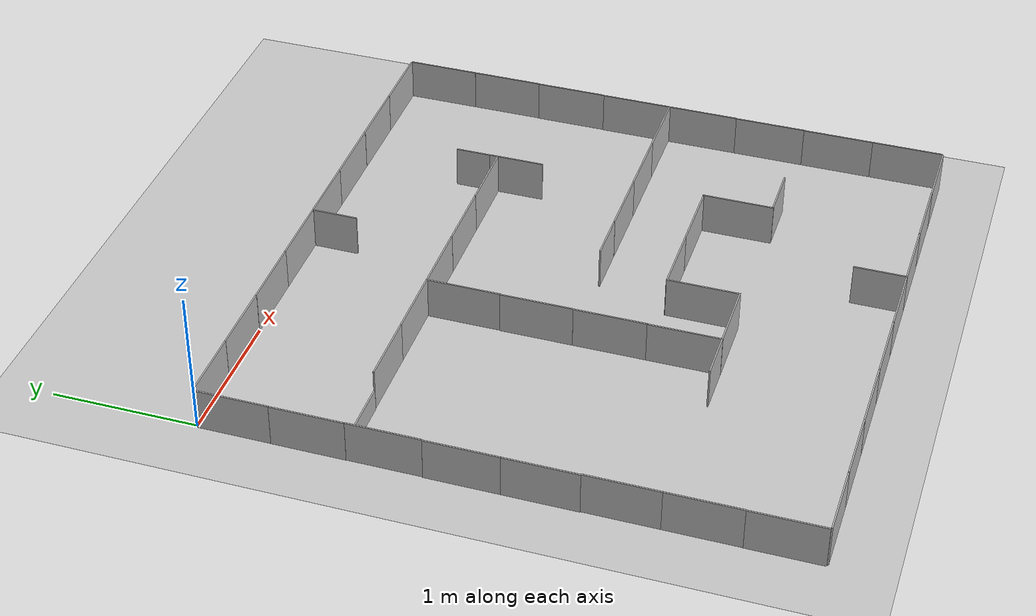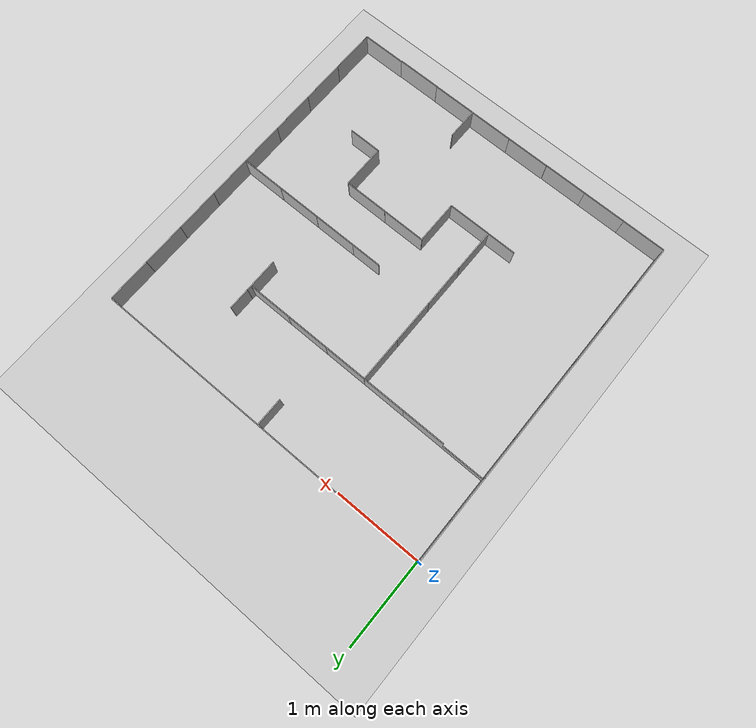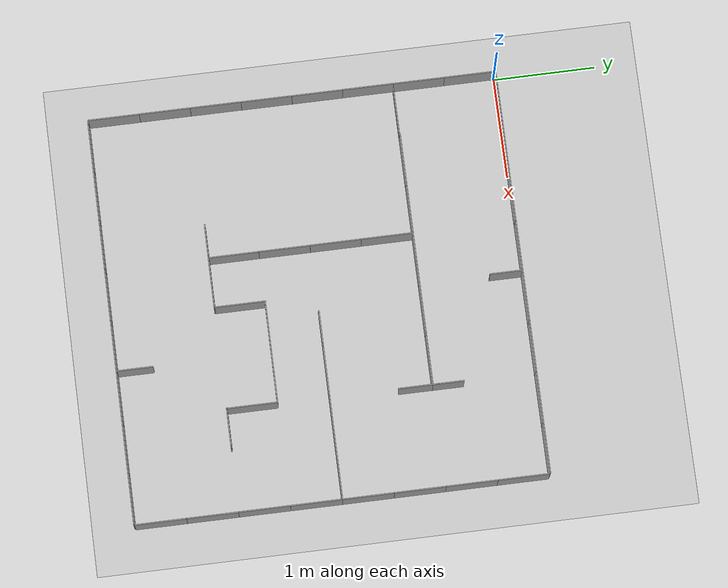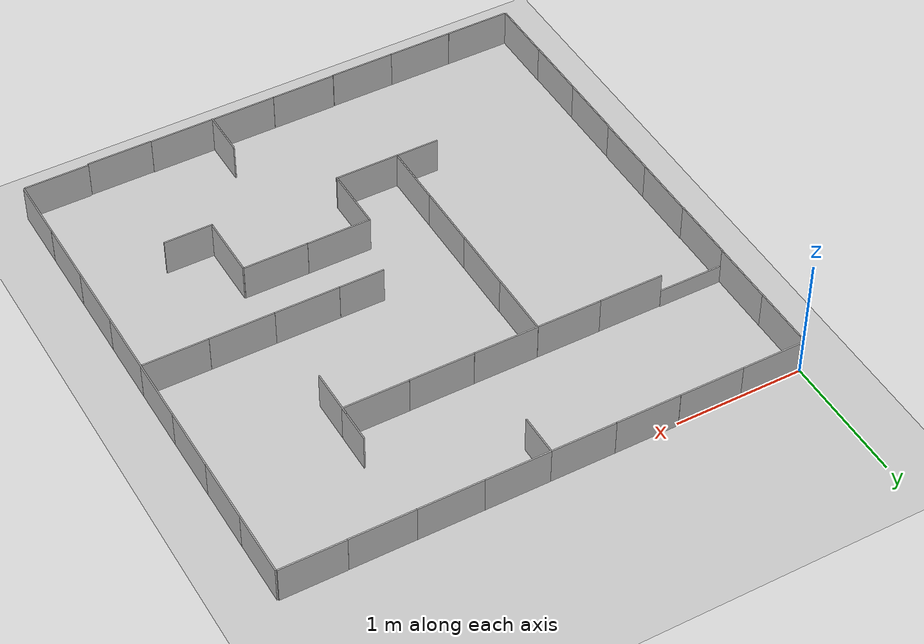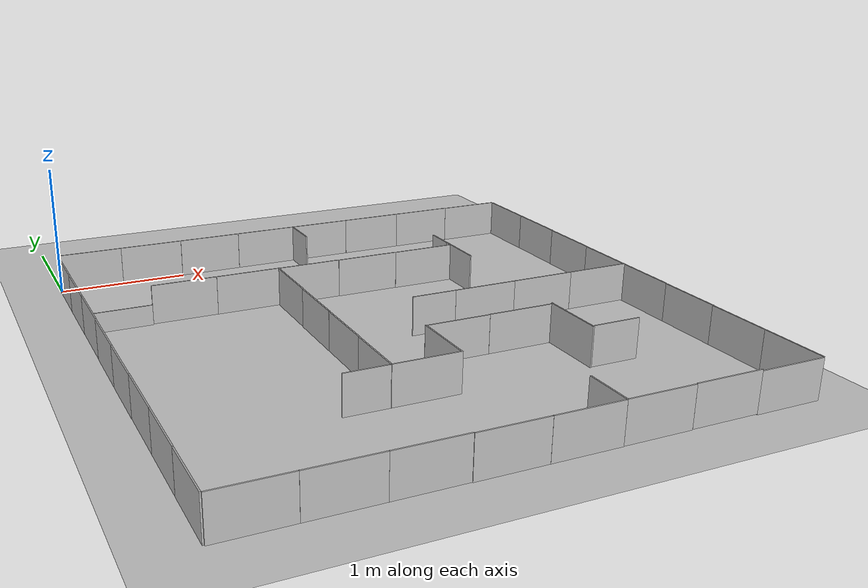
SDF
<sdf version="1.6">
 <world name="default">
  <light name="sun" type="directional">
   <pose>0 0 10 0 -0 0</pose>
   <diffuse>0.8 0.8 0.8 1</diffuse>
   <specular>0.2 0.2 0.2 1</specular>
   <attenuation>
    <range>1000</range>
    <constant>0.9</constant>
    <linear>0.01</linear>
    <quadratic>0.001</quadratic>
   </attenuation>
   <direction>-0.5 0.1 -0.9</direction>
  </light>
  <model name="ground_plane">
   <static>1</static>
   <link name="link">
    <collision name="collision">
     <geometry><plane><normal>0 0 1</normal><size>100 100</size></plane></geometry>
     <surface><friction><ode><mu>100</mu><mu2>50</mu2></ode></friction></surface>
    </collision>
    <visual name="visual">
     <cast_shadows>0</cast_shadows>
     <geometry><plane><normal>0 0 1</normal><size>100 100</size></plane></geometry>
     <material>
      <script><uri>file://media/materials/scripts/gazebo.material</uri><name>Gazebo/Grey</name></script>
     </material>
    </visual>
   </link>
  </model>
  <gravity>0 0 -9.8</gravity>
  <magnetic_field>6e-06 2.3e-05 -4.2e-05</magnetic_field>
  <atmosphere type="adiabatic"/>
  <physics name="default_physics" default="0" type="ode">
   <max_step_size>0.001</max_step_size>
   <real_time_factor>1</real_time_factor>
   <real_time_update_rate>1000</real_time_update_rate>
  </physics>
  <scene><ambient>0.4 0.4 0.4 1</ambient><background>0.7 0.7 0.7 1</background><shadows>1</shadows></scene>
  <audio><device>default</device></audio>
  <spherical_coordinates>
   <surface_model>EARTH_WGS84</surface_model>
   <latitude_deg>0</latitude_deg>
   <longitude_deg>0</longitude_deg>
   <elevation>0</elevation>
   <heading_deg>0</heading_deg>
  </spherical_coordinates>
  <model name="M1_qr_0">
   <static>1</static>
   <link name="link">
    <collision name="collision">
     <geometry><box><size>0.5 0.01 0.3</size></box></geometry>
     <surface><friction><ode><mu>30</mu><mu2>30</mu2></ode></friction></surface>
    </collision>
    <visual name="visual">
     <geometry><box><size>0.5 0.01 0.3</size></box></geometry>
     <material>
      <script>
       <uri>model://M1_qr/materials/scripts</uri>
       <uri>model://M1_qr/materials/textures/</uri>
       <name>M1_qr/Image</name>
      </script>
     </material>
    </visual>
   </link>
   <pose>0.747926 0.007287 0.150535 0 -0 0</pose>
  </model>
  <model name="M1_qr_1">
   <static>1</static>
   <link name="link">
    <collision name="collision">
     <geometry><box><size>0.5 0.01 0.3</size></box></geometry>
     <surface><friction><ode><mu>30</mu><mu2>30</mu2></ode></friction></surface>
    </collision>
    <visual name="visual">
     <geometry><box><size>0.5 0.01 0.3</size></box></geometry>
     <material>
      <script>
       <uri>model://M1_qr/materials/scripts</uri>
       <uri>model://M1_qr/materials/textures/</uri>
       <name>M1_qr/Image</name>
      </script>
     </material>
    </visual>
   </link>
   <pose>1.24851 0.006495 0.150627 0 -0 0</pose>
  </model>
  <model name="M1_qr_2">
   <static>1</static>
   <link name="link">
    <collision name="collision">
     <geometry><box><size>0.5 0.01 0.3</size></box></geometry>
     <surface><friction><ode><mu>30</mu><mu2>30</mu2></ode></friction></surface>
    </collision>
    <visual name="visual">
     <geometry><box><size>0.5 0.01 0.3</size></box></geometry>
     <material>
      <script>
       <uri>model://M1_qr/materials/scripts</uri>
       <uri>model://M1_qr/materials/textures/</uri>
       <name>M1_qr/Image</name>
      </script>
     </material>
    </visual>
   </link>
   <pose>1.74893 0.006779 0.150594 0 -0 0</pose>
  </model>
  <model name="M1_qr_3">
   <static>1</static>
   <link name="link">
    <collision name="collision">
     <geometry><box><size>0.5 0.01 0.3</size></box></geometry>
     <surface><friction><ode><mu>30</mu><mu2>30</mu2></ode></friction></surface>
    </collision>
    <visual name="visual">
     <geometry><box><size>0.5 0.01 0.3</size></box></geometry>
     <material>
      <script>
       <uri>model://M1_qr/materials/scripts</uri>
       <uri>model://M1_qr/materials/textures/</uri>
       <name>M1_qr/Image</name>
      </script>
     </material>
    </visual>
   </link>
   <pose>2.24929 0.007017 0.150567 0 -0 0</pose>
  </model>
  <model name="M1_qr_4">
   <static>1</static>
   <link name="link">
    <collision name="collision">
     <geometry><box><size>0.5 0.01 0.3</size></box></geometry>
     <surface><friction><ode><mu>30</mu><mu2>30</mu2></ode></friction></surface>
    </collision>
    <visual name="visual">
     <geometry><box><size>0.5 0.01 0.3</size></box></geometry>
     <material>
      <script>
       <uri>model://M1_qr/materials/scripts</uri>
       <uri>model://M1_qr/materials/textures/</uri>
       <name>M1_qr/Image</name>
      </script>
     </material>
    </visual>
   </link>
   <pose>2.74977 0.006999 0.150569 0 -0 0</pose>
  </model>
  <model name="M1_qr_5">
   <static>1</static>
   <link name="link">
    <collision name="collision">
     <geometry><box><size>0.5 0.01 0.3</size></box></geometry>
     <surface><friction><ode><mu>30</mu><mu2>30</mu2></ode></friction></surface>
    </collision>
    <visual name="visual">
     <geometry><box><size>0.5 0.01 0.3</size></box></geometry>
     <material>
      <script>
       <uri>model://M1_qr/materials/scripts</uri>
       <uri>model://M1_qr/materials/textures/</uri>
       <name>M1_qr/Image</name>
      </script>
     </material>
    </visual>
   </link>
   <pose>3.25049 0.00689 0.150581 0 -0 0</pose>
  </model>
  <model name="M1_qr_6">
   <static>1</static>
   <link name="link">
    <collision name="collision">
     <geometry><box><size>0.5 0.01 0.3</size></box></geometry>
     <surface><friction><ode><mu>30</mu><mu2>30</mu2></ode></friction></surface>
    </collision>
    <visual name="visual">
     <geometry><box><size>0.5 0.01 0.3</size></box></geometry>
     <material>
      <script>
       <uri>model://M1_qr/materials/scripts</uri>
       <uri>model://M1_qr/materials/textures/</uri>
       <name>M1_qr/Image</name>
      </script>
     </material>
    </visual>
   </link>
   <pose>3.75085 0.006974 0.148724 0 -0 0</pose>
  </model>
  <model name="M3_qr">
   <static>1</static>
   <link name="link">
    <collision name="collision">
     <geometry><box><size>0.01 0.5 0.3</size></box></geometry>
     <surface><friction><ode><mu>30</mu><mu2>30</mu2></ode></friction></surface>
    </collision>
    <visual name="visual">
     <geometry><box><size>0.01 0.5 0.3</size></box></geometry>
     <material>
      <script>
       <uri>model://M3_qr/materials/scripts</uri>
       <uri>model://M3_qr/materials/textures/</uri>
       <name>M3_qr/Image</name>
      </script>
     </material>
    </visual>
   </link>
   <pose>4.00638 -0.247919 0.147691 0 -0 0</pose>
  </model>
  <model name="M3_qr_0">
   <static>1</static>
   <link name="link">
    <collision name="collision">
     <geometry><box><size>0.01 0.5 0.3</size></box></geometry>
     <surface><friction><ode><mu>30</mu><mu2>30</mu2></ode></friction></surface>
    </collision>
    <visual name="visual">
     <geometry><box><size>0.01 0.5 0.3</size></box></geometry>
     <material>
      <script>
       <uri>model://M3_qr/materials/scripts</uri>
       <uri>model://M3_qr/materials/textures/</uri>
       <name>M3_qr/Image</name>
      </script>
     </material>
    </visual>
   </link>
   <pose>4.00643 -0.748517 0.147688 0 -0 0</pose>
  </model>
  <model name="M3_qr_1">
   <static>1</static>
   <link name="link">
    <collision name="collision">
     <geometry><box><size>0.01 0.5 0.3</size></box></geometry>
     <surface><friction><ode><mu>30</mu><mu2>30</mu2></ode></friction></surface>
    </collision>
    <visual name="visual">
     <geometry><box><size>0.01 0.5 0.3</size></box></geometry>
     <material>
      <script>
       <uri>model://M3_qr/materials/scripts</uri>
       <uri>model://M3_qr/materials/textures/</uri>
       <name>M3_qr/Image</name>
      </script>
     </material>
    </visual>
   </link>
   <pose>4.00637 -1.24897 0.145912 0 -0 0</pose>
  </model>
  <model name="M3_qr_2">
   <static>1</static>
   <link name="link">
    <collision name="collision">
     <geometry><box><size>0.01 0.5 0.3</size></box></geometry>
     <surface><friction><ode><mu>30</mu><mu2>30</mu2></ode></friction></surface>
    </collision>
    <visual name="visual">
     <geometry><box><size>0.01 0.5 0.3</size></box></geometry>
     <material>
      <script>
       <uri>model://M3_qr/materials/scripts</uri>
       <uri>model://M3_qr/materials/textures/</uri>
       <name>M3_qr/Image</name>
      </script>
     </material>
    </visual>
   </link>
   <pose>4.00626 -1.7491 0.144137 0 -0 0</pose>
  </model>
  <model name="M3_qr_3">
   <static>1</static>
   <link name="link">
    <collision name="collision">
     <geometry><box><size>0.01 0.5 0.3</size></box></geometry>
     <surface><friction><ode><mu>30</mu><mu2>30</mu2></ode></friction></surface>
    </collision>
    <visual name="visual">
     <geometry><box><size>0.01 0.5 0.3</size></box></geometry>
     <material>
      <script>
       <uri>model://M3_qr/materials/scripts</uri>
       <uri>model://M3_qr/materials/textures/</uri>
       <name>M3_qr/Image</name>
      </script>
     </material>
    </visual>
   </link>
   <pose>4.00628 -2.24937 0.144137 0 -0 0</pose>
  </model>
  <model name="M3_qr_4">
   <static>1</static>
   <link name="link">
    <collision name="collision">
     <geometry><box><size>0.01 0.5 0.3</size></box></geometry>
     <surface><friction><ode><mu>30</mu><mu2>30</mu2></ode></friction></surface>
    </collision>
    <visual name="visual">
     <geometry><box><size>0.01 0.5 0.3</size></box></geometry>
     <material>
      <script>
       <uri>model://M3_qr/materials/scripts</uri>
       <uri>model://M3_qr/materials/textures/</uri>
       <name>M3_qr/Image</name>
      </script>
     </material>
    </visual>
   </link>
   <pose>4.00595 -2.74938 0.142376 0 -0 0</pose>
  </model>
  <model name="M3_qr_5">
   <static>1</static>
   <link name="link">
    <collision name="collision">
     <geometry><box><size>0.01 0.5 0.3</size></box></geometry>
     <surface><friction><ode><mu>30</mu><mu2>30</mu2></ode></friction></surface>
    </collision>
    <visual name="visual">
     <geometry><box><size>0.01 0.5 0.3</size></box></geometry>
     <material>
      <script>
       <uri>model://M3_qr/materials/scripts</uri>
       <uri>model://M3_qr/materials/textures/</uri>
       <name>M3_qr/Image</name>
      </script>
     </material>
    </visual>
   </link>
   <pose>4.00606 -3.24969 0.140592 0 -0 0</pose>
  </model>
  <model name="M3_qr_6">
   <static>1</static>
   <link name="link">
    <collision name="collision">
     <geometry><box><size>0.01 0.5 0.3</size></box></geometry>
     <surface><friction><ode><mu>30</mu><mu2>30</mu2></ode></friction></surface>
    </collision>
    <visual name="visual">
     <geometry><box><size>0.01 0.5 0.3</size></box></geometry>
     <material>
      <script>
       <uri>model://M3_qr/materials/scripts</uri>
       <uri>model://M3_qr/materials/textures/</uri>
       <name>M3_qr/Image</name>
      </script>
     </material>
    </visual>
   </link>
   <pose>4.00625 -3.75002 0.140577 0 -0 0</pose>
  </model>
  <model name="M1_qr_7">
   <static>1</static>
   <link name="link">
    <collision name="collision">
     <geometry><box><size>0.5 0.01 0.3</size></box></geometry>
     <surface><friction><ode><mu>30</mu><mu2>30</mu2></ode></friction></surface>
    </collision>
    <visual name="visual">
     <geometry><box><size>0.5 0.01 0.3</size></box></geometry>
     <material>
      <script>
       <uri>model://M1_qr/materials/scripts</uri>
       <uri>model://M1_qr/materials/textures/</uri>
       <name>M1_qr/Image</name>
      </script>
     </material>
    </visual>
   </link>
   <pose>3.75096 -4.00449 0.139755 0 -0 0</pose>
  </model>
  <model name="M1_qr_8">
   <static>1</static>
   <link name="link">
    <collision name="collision">
     <geometry><box><size>0.5 0.01 0.3</size></box></geometry>
     <surface><friction><ode><mu>30</mu><mu2>30</mu2></ode></friction></surface>
    </collision>
    <visual name="visual">
     <geometry><box><size>0.5 0.01 0.3</size></box></geometry>
     <material>
      <script>
       <uri>model://M1_qr/materials/scripts</uri>
       <uri>model://M1_qr/materials/textures/</uri>
       <name>M1_qr/Image</name>
      </script>
     </material>
    </visual>
   </link>
   <pose>3.25087 -4.00444 0.150791 0 -0 0</pose>
  </model>
  <model name="M1_qr_9">
   <static>1</static>
   <link name="link">
    <collision name="collision">
     <geometry><box><size>0.5 0.01 0.3</size></box></geometry>
     <surface><friction><ode><mu>30</mu><mu2>30</mu2></ode></friction></surface>
    </collision>
    <visual name="visual">
     <geometry><box><size>0.5 0.01 0.3</size></box></geometry>
     <material>
      <script>
       <uri>model://M1_qr/materials/scripts</uri>
       <uri>model://M1_qr/materials/textures/</uri>
       <name>M1_qr/Image</name>
      </script>
     </material>
    </visual>
   </link>
   <pose>2.7506 -4.0045 0.147322 0 -0 0</pose>
  </model>
  <model name="M1_qr_10">
   <static>1</static>
   <link name="link">
    <collision name="collision">
     <geometry><box><size>0.5 0.01 0.3</size></box></geometry>
     <surface><friction><ode><mu>30</mu><mu2>30</mu2></ode></friction></surface>
    </collision>
    <visual name="visual">
     <geometry><box><size>0.5 0.01 0.3</size></box></geometry>
     <material>
      <script>
       <uri>model://M1_qr/materials/scripts</uri>
       <uri>model://M1_qr/materials/textures/</uri>
       <name>M1_qr/Image</name>
      </script>
     </material>
    </visual>
   </link>
   <pose>2.25026 -4.00466 0.145579 0 -0 0</pose>
  </model>
  <model name="M1_qr_11">
   <static>1</static>
   <link name="link">
    <collision name="collision">
     <geometry><box><size>0.5 0.01 0.3</size></box></geometry>
     <surface><friction><ode><mu>30</mu><mu2>30</mu2></ode></friction></surface>
    </collision>
    <visual name="visual">
     <geometry><box><size>0.5 0.01 0.3</size></box></geometry>
     <material>
      <script>
       <uri>model://M1_qr/materials/scripts</uri>
       <uri>model://M1_qr/materials/textures/</uri>
       <name>M1_qr/Image</name>
      </script>
     </material>
    </visual>
   </link>
   <pose>1.74963 -4.00461 0.145582 0 -0 0</pose>
  </model>
  <model name="M1_qr_12">
   <static>1</static>
   <link name="link">
    <collision name="collision">
     <geometry><box><size>0.5 0.01 0.3</size></box></geometry>
     <surface><friction><ode><mu>30</mu><mu2>30</mu2></ode></friction></surface>
    </collision>
    <visual name="visual">
     <geometry><box><size>0.5 0.01 0.3</size></box></geometry>
     <material>
      <script>
       <uri>model://M1_qr/materials/scripts</uri>
       <uri>model://M1_qr/materials/textures/</uri>
       <name>M1_qr/Image</name>
      </script>
     </material>
    </visual>
   </link>
   <pose>1.24678 -4.00477 0.149038 0 -0 0</pose>
  </model>
  <model name="M1_qr_13">
   <static>1</static>
   <link name="link">
    <collision name="collision">
     <geometry><box><size>0.5 0.01 0.3</size></box></geometry>
     <surface><friction><ode><mu>30</mu><mu2>30</mu2></ode></friction></surface>
    </collision>
    <visual name="visual">
     <geometry><box><size>0.5 0.01 0.3</size></box></geometry>
     <material>
      <script>
       <uri>model://M1_qr/materials/scripts</uri>
       <uri>model://M1_qr/materials/textures/</uri>
       <name>M1_qr/Image</name>
      </script>
     </material>
    </visual>
   </link>
   <pose>0.749721 -4.0045 0.149054 0 -0 0</pose>
  </model>
  <model name="M1_qr_14">
   <static>1</static>
   <link name="link">
    <collision name="collision">
     <geometry><box><size>0.5 0.01 0.3</size></box></geometry>
     <surface><friction><ode><mu>30</mu><mu2>30</mu2></ode></friction></surface>
    </collision>
    <visual name="visual">
     <geometry><box><size>0.5 0.01 0.3</size></box></geometry>
     <material>
      <script>
       <uri>model://M1_qr/materials/scripts</uri>
       <uri>model://M1_qr/materials/textures/</uri>
       <name>M1_qr/Image</name>
      </script>
     </material>
    </visual>
   </link>
   <pose>0.249187 -4.00441 0.14906 0 -0 0</pose>
  </model>
  <model name="M3_qr_7">
   <static>1</static>
   <link name="link">
    <collision name="collision">
     <geometry><box><size>0.01 0.5 0.3</size></box></geometry>
     <surface><friction><ode><mu>30</mu><mu2>30</mu2></ode></friction></surface>
    </collision>
    <visual name="visual">
     <geometry><box><size>0.01 0.5 0.3</size></box></geometry>
     <material>
      <script>
       <uri>model://M3_qr/materials/scripts</uri>
       <uri>model://M3_qr/materials/textures/</uri>
       <name>M3_qr/Image</name>
      </script>
     </material>
    </visual>
   </link>
   <pose>-0.005607 -0.248237 0.150176 0 -0 0</pose>
  </model>
  <model name="M3_qr_8">
   <static>1</static>
   <link name="link">
    <collision name="collision">
     <geometry><box><size>0.01 0.5 0.3</size></box></geometry>
     <surface><friction><ode><mu>30</mu><mu2>30</mu2></ode></friction></surface>
    </collision>
    <visual name="visual">
     <geometry><box><size>0.01 0.5 0.3</size></box></geometry>
     <material>
      <script>
       <uri>model://M3_qr/materials/scripts</uri>
       <uri>model://M3_qr/materials/textures/</uri>
       <name>M3_qr/Image</name>
      </script>
     </material>
    </visual>
   </link>
   <pose>-0.005586 -0.748313 0.148912 0 -0 0</pose>
  </model>
  <model name="M3_qr_9">
   <static>1</static>
   <link name="link">
    <collision name="collision">
     <geometry><box><size>0.01 0.5 0.3</size></box></geometry>
     <surface><friction><ode><mu>30</mu><mu2>30</mu2></ode></friction></surface>
    </collision>
    <visual name="visual">
     <geometry><box><size>0.01 0.5 0.3</size></box></geometry>
     <material>
      <script>
       <uri>model://M3_qr/materials/scripts</uri>
       <uri>model://M3_qr/materials/textures/</uri>
       <name>M3_qr/Image</name>
      </script>
     </material>
    </visual>
   </link>
   <pose>-0.005598 -1.24868 0.150883 0 -0 0</pose>
  </model>
  <model name="M3_qr_10">
   <static>1</static>
   <link name="link">
    <collision name="collision">
     <geometry><box><size>0.01 0.5 0.3</size></box></geometry>
     <surface><friction><ode><mu>30</mu><mu2>30</mu2></ode></friction></surface>
    </collision>
    <visual name="visual">
     <geometry><box><size>0.01 0.5 0.3</size></box></geometry>
     <material>
      <script>
       <uri>model://M3_qr/materials/scripts</uri>
       <uri>model://M3_qr/materials/textures/</uri>
       <name>M3_qr/Image</name>
      </script>
     </material>
    </visual>
   </link>
   <pose>-0.005683 -1.74896 0.146444 0 -0 0</pose>
  </model>
  <model name="M3_qr_11">
   <static>1</static>
   <link name="link">
    <collision name="collision">
     <geometry><box><size>0.01 0.5 0.3</size></box></geometry>
     <surface><friction><ode><mu>30</mu><mu2>30</mu2></ode></friction></surface>
    </collision>
    <visual name="visual">
     <geometry><box><size>0.01 0.5 0.3</size></box></geometry>
     <material>
      <script>
       <uri>model://M3_qr/materials/scripts</uri>
       <uri>model://M3_qr/materials/textures/</uri>
       <name>M3_qr/Image</name>
      </script>
     </material>
    </visual>
   </link>
   <pose>-0.006002 -2.24924 0.146428 0 -0 0</pose>
  </model>
  <model name="M3_qr_12">
   <static>1</static>
   <link name="link">
    <collision name="collision">
     <geometry><box><size>0.01 0.5 0.3</size></box></geometry>
     <surface><friction><ode><mu>30</mu><mu2>30</mu2></ode></friction></surface>
    </collision>
    <visual name="visual">
     <geometry><box><size>0.01 0.5 0.3</size></box></geometry>
     <material>
      <script>
       <uri>model://M3_qr/materials/scripts</uri>
       <uri>model://M3_qr/materials/textures/</uri>
       <name>M3_qr/Image</name>
      </script>
     </material>
    </visual>
   </link>
   <pose>-0.00604 -2.7494 0.150862 0 -0 0</pose>
  </model>
  <model name="M3_qr_13">
   <static>1</static>
   <link name="link">
    <collision name="collision">
     <geometry><box><size>0.01 0.5 0.3</size></box></geometry>
     <surface><friction><ode><mu>30</mu><mu2>30</mu2></ode></friction></surface>
    </collision>
    <visual name="visual">
     <geometry><box><size>0.01 0.5 0.3</size></box></geometry>
     <material>
      <script>
       <uri>model://M3_qr/materials/scripts</uri>
       <uri>model://M3_qr/materials/textures/</uri>
       <name>M3_qr/Image</name>
      </script>
     </material>
    </visual>
   </link>
   <pose>-0.006434 -3.24957 0.150844 0 -0 0</pose>
  </model>
  <model name="M3_qr_14">
   <static>1</static>
   <link name="link">
    <collision name="collision">
     <geometry><box><size>0.01 0.5 0.3</size></box></geometry>
     <surface><friction><ode><mu>30</mu><mu2>30</mu2></ode></friction></surface>
    </collision>
    <visual name="visual">
     <geometry><box><size>0.01 0.5 0.3</size></box></geometry>
     <material>
      <script>
       <uri>model://M3_qr/materials/scripts</uri>
       <uri>model://M3_qr/materials/textures/</uri>
       <name>M3_qr/Image</name>
      </script>
     </material>
    </visual>
   </link>
   <pose>-0.006187 -3.74977 0.148638 0 -0 0</pose>
  </model>
  <model name="M1_qr_15">
   <static>1</static>
   <link name="link">
    <collision name="collision">
     <geometry><box><size>0.5 0.01 0.3</size></box></geometry>
     <surface><friction><ode><mu>30</mu><mu2>30</mu2></ode></friction></surface>
    </collision>
    <visual name="visual">
     <geometry><box><size>0.5 0.01 0.3</size></box></geometry>
     <material>
      <script>
       <uri>model://M1_qr/materials/scripts</uri>
       <uri>model://M1_qr/materials/textures/</uri>
       <name>M1_qr/Image</name>
      </script>
     </material>
    </visual>
   </link>
   <pose>0.249362 -0.998899 0 0 -0 0</pose>
  </model>
  <model name="M1_qr_16">
   <static>1</static>
   <link name="link">
    <collision name="collision">
     <geometry><box><size>0.5 0.01 0.3</size></box></geometry>
     <surface><friction><ode><mu>30</mu><mu2>30</mu2></ode></friction></surface>
    </collision>
    <visual name="visual">
     <geometry><box><size>0.5 0.01 0.3</size></box></geometry>
     <material>
      <script>
       <uri>model://M1_qr/materials/scripts</uri>
       <uri>model://M1_qr/materials/textures/</uri>
       <name>M1_qr/Image</name>
      </script>
     </material>
    </visual>
   </link>
   <pose>0.749207 -0.9992 0.150727 0 -0 0</pose>
  </model>
  <model name="M1_qr_17">
   <static>1</static>
   <link name="link">
    <collision name="collision">
     <geometry><box><size>0.5 0.01 0.3</size></box></geometry>
     <surface><friction><ode><mu>30</mu><mu2>30</mu2></ode></friction></surface>
    </collision>
    <visual name="visual">
     <geometry><box><size>0.5 0.01 0.3</size></box></geometry>
     <material>
      <script>
       <uri>model://M1_qr/materials/scripts</uri>
       <uri>model://M1_qr/materials/textures/</uri>
       <name>M1_qr/Image</name>
      </script>
     </material>
    </visual>
   </link>
   <pose>1.24964 -0.998849 0.150142 0 -0 0</pose>
  </model>
  <model name="M1_qr_18">
   <static>1</static>
   <link name="link">
    <collision name="collision">
     <geometry><box><size>0.5 0.01 0.3</size></box></geometry>
     <surface><friction><ode><mu>30</mu><mu2>30</mu2></ode></friction></surface>
    </collision>
    <visual name="visual">
     <geometry><box><size>0.5 0.01 0.3</size></box></geometry>
     <material>
      <script>
       <uri>model://M1_qr/materials/scripts</uri>
       <uri>model://M1_qr/materials/textures/</uri>
       <name>M1_qr/Image</name>
      </script>
     </material>
    </visual>
   </link>
   <pose>1.75036 -0.999132 0.14886 0 -0 0</pose>
  </model>
  <model name="M1_qr_19">
   <static>1</static>
   <link name="link">
    <collision name="collision">
     <geometry><box><size>0.5 0.01 0.3</size></box></geometry>
     <surface><friction><ode><mu>30</mu><mu2>30</mu2></ode></friction></surface>
    </collision>
    <visual name="visual">
     <geometry><box><size>0.5 0.01 0.3</size></box></geometry>
     <material>
      <script>
       <uri>model://M1_qr/materials/scripts</uri>
       <uri>model://M1_qr/materials/textures/</uri>
       <name>M1_qr/Image</name>
      </script>
     </material>
    </visual>
   </link>
   <pose>2.25094 -0.999109 0.147551 0 -0 0</pose>
  </model>
  <model name="M1_qr_20">
   <static>1</static>
   <link name="link">
    <collision name="collision">
     <geometry><box><size>0.5 0.01 0.3</size></box></geometry>
     <surface><friction><ode><mu>30</mu><mu2>30</mu2></ode></friction></surface>
    </collision>
    <visual name="visual">
     <geometry><box><size>0.5 0.01 0.3</size></box></geometry>
     <material>
      <script>
       <uri>model://M1_qr/materials/scripts</uri>
       <uri>model://M1_qr/materials/textures/</uri>
       <name>M1_qr/Image</name>
      </script>
     </material>
    </visual>
   </link>
   <pose>2.75151 -0.99895 0.146223 0 -0 0</pose>
  </model>
  <model name="M3_qr_15">
   <static>1</static>
   <link name="link">
    <collision name="collision">
     <geometry><box><size>0.01 0.391808 0.3</size></box></geometry>
     <surface><friction><ode><mu>30</mu><mu2>30</mu2></ode></friction></surface>
    </collision>
    <visual name="visual">
     <geometry><box><size>0.01 0.391808 0.3</size></box></geometry>
     <material>
      <script>
       <uri>model://M3_qr/materials/scripts</uri>
       <uri>model://M3_qr/materials/textures/</uri>
       <name>M3_qr/Image</name>
      </script>
     </material>
    </visual>
   </link>
   <pose>3.0067 -1.13581 0.148544 0 -0 0</pose>
  </model>
  <model name="M3_qr_16">
   <static>1</static>
   <link name="link">
    <collision name="collision">
     <geometry><box><size>0.01 0.305906 0.3</size></box></geometry>
     <surface><friction><ode><mu>30</mu><mu2>30</mu2></ode></friction></surface>
    </collision>
    <visual name="visual">
     <geometry><box><size>0.01 0.305906 0.3</size></box></geometry>
     <material>
      <script>
       <uri>model://M3_qr/materials/scripts</uri>
       <uri>model://M3_qr/materials/textures/</uri>
       <name>M3_qr/Image</name>
      </script>
     </material>
    </visual>
   </link>
   <pose>3.0071 -0.846167 0.147163 0 -0 0</pose>
  </model>
  <model name="M1_qr_21">
   <static>1</static>
   <link name="link">
    <collision name="collision">
     <geometry><box><size>0.5 0.01 0.3</size></box></geometry>
     <surface><friction><ode><mu>30</mu><mu2>30</mu2></ode></friction></surface>
    </collision>
    <visual name="visual">
     <geometry><box><size>0.5 0.01 0.3</size></box></geometry>
     <material>
      <script>
       <uri>model://M1_qr/materials/scripts</uri>
       <uri>model://M1_qr/materials/textures/</uri>
       <name>M1_qr/Image</name>
      </script>
     </material>
    </visual>
   </link>
   <pose>3.75125 -1.99911 0.148674 0 -0 0</pose>
  </model>
  <model name="M1_qr_22">
   <static>1</static>
   <link name="link">
    <collision name="collision">
     <geometry><box><size>0.5 0.01 0.3</size></box></geometry>
     <surface><friction><ode><mu>30</mu><mu2>30</mu2></ode></friction></surface>
    </collision>
    <visual name="visual">
     <geometry><box><size>0.5 0.01 0.3</size></box></geometry>
     <material>
      <script>
       <uri>model://M1_qr/materials/scripts</uri>
       <uri>model://M1_qr/materials/textures/</uri>
       <name>M1_qr/Image</name>
      </script>
     </material>
    </visual>
   </link>
   <pose>3.25087 -1.99935 0.148697 0 -0 0</pose>
  </model>
  <model name="M1_qr_23">
   <static>1</static>
   <link name="link">
    <collision name="collision">
     <geometry><box><size>0.5 0.01 0.3</size></box></geometry>
     <surface><friction><ode><mu>30</mu><mu2>30</mu2></ode></friction></surface>
    </collision>
    <visual name="visual">
     <geometry><box><size>0.5 0.01 0.3</size></box></geometry>
     <material>
      <script>
       <uri>model://M1_qr/materials/scripts</uri>
       <uri>model://M1_qr/materials/textures/</uri>
       <name>M1_qr/Image</name>
      </script>
     </material>
    </visual>
   </link>
   <pose>2.75074 -1.99946 0.148708 0 -0 0</pose>
  </model>
  <model name="M1_qr_24">
   <static>1</static>
   <link name="link">
    <collision name="collision">
     <geometry><box><size>0.34881 0.01 0.3</size></box></geometry>
     <surface><friction><ode><mu>30</mu><mu2>30</mu2></ode></friction></surface>
    </collision>
    <visual name="visual">
     <geometry><box><size>0.34881 0.01 0.3</size></box></geometry>
     <material>
      <script>
       <uri>model://M1_qr/materials/scripts</uri>
       <uri>model://M1_qr/materials/textures/</uri>
       <name>M1_qr/Image</name>
      </script>
     </material>
    </visual>
   </link>
   <pose>2.32615 -1.99921 0.148682 0 -0 0</pose>
  </model>
  <model name="M3_qr_17">
   <static>1</static>
   <link name="link">
    <collision name="collision">
     <geometry><box><size>0.01 0.5 0.3</size></box></geometry>
     <surface><friction><ode><mu>30</mu><mu2>30</mu2></ode></friction></surface>
    </collision>
    <visual name="visual">
     <geometry><box><size>0.01 0.5 0.3</size></box></geometry>
     <material>
      <script>
       <uri>model://M3_qr/materials/scripts</uri>
       <uri>model://M3_qr/materials/textures/</uri>
       <name>M3_qr/Image</name>
      </script>
     </material>
    </visual>
   </link>
   <pose>1.5004 -1.25412 0.147114 0 -0 0</pose>
  </model>
  <model name="M3_qr_18">
   <static>1</static>
   <link name="link">
    <collision name="collision">
     <geometry><box><size>0.01 0.5 0.3</size></box></geometry>
     <surface><friction><ode><mu>30</mu><mu2>30</mu2></ode></friction></surface>
    </collision>
    <visual name="visual">
     <geometry><box><size>0.01 0.5 0.3</size></box></geometry>
     <material>
      <script>
       <uri>model://M3_qr/materials/scripts</uri>
       <uri>model://M3_qr/materials/textures/</uri>
       <name>M3_qr/Image</name>
      </script>
     </material>
    </visual>
   </link>
   <pose>1.50036 -1.75419 0.144296 0 -0 0</pose>
  </model>
  <model name="M3_qr_19">
   <static>1</static>
   <link name="link">
    <collision name="collision">
     <geometry><box><size>0.01 0.5 0.3</size></box></geometry>
     <surface><friction><ode><mu>30</mu><mu2>30</mu2></ode></friction></surface>
    </collision>
    <visual name="visual">
     <geometry><box><size>0.01 0.5 0.3</size></box></geometry>
     <material>
      <script>
       <uri>model://M3_qr/materials/scripts</uri>
       <uri>model://M3_qr/materials/textures/</uri>
       <name>M3_qr/Image</name>
      </script>
     </material>
    </visual>
   </link>
   <pose>1.50069 -2.25456 0.142146 0 -0 0</pose>
  </model>
  <model name="M3_qr_20">
   <static>1</static>
   <link name="link">
    <collision name="collision">
     <geometry><box><size>0.01 0.5 0.3</size></box></geometry>
     <surface><friction><ode><mu>30</mu><mu2>30</mu2></ode></friction></surface>
    </collision>
    <visual name="visual">
     <geometry><box><size>0.01 0.5 0.3</size></box></geometry>
     <material>
      <script>
       <uri>model://M3_qr/materials/scripts</uri>
       <uri>model://M3_qr/materials/textures/</uri>
       <name>M3_qr/Image</name>
      </script>
     </material>
    </visual>
   </link>
   <pose>1.50059 -2.75088 0.139616 0 -0 0</pose>
  </model>
  <model name="M1_qr_25">
   <static>1</static>
   <link name="link">
    <collision name="collision">
     <geometry><box><size>0.5 0.01 0.3</size></box></geometry>
     <surface><friction><ode><mu>30</mu><mu2>30</mu2></ode></friction></surface>
    </collision>
    <visual name="visual">
     <geometry><box><size>0.5 0.01 0.3</size></box></geometry>
     <material>
      <script>
       <uri>model://M1_qr/materials/scripts</uri>
       <uri>model://M1_qr/materials/textures/</uri>
       <name>M1_qr/Image</name>
      </script>
     </material>
    </visual>
   </link>
   <pose>1.74874 -2.996 0.14085 0 -0 0</pose>
  </model>
  <model name="M3_qr_21">
   <static>1</static>
   <link name="link">
    <collision name="collision">
     <geometry><box><size>0.01 0.5 0.3</size></box></geometry>
     <surface><friction><ode><mu>30</mu><mu2>30</mu2></ode></friction></surface>
    </collision>
    <visual name="visual">
     <geometry><box><size>0.01 0.5 0.3</size></box></geometry>
     <material>
      <script>
       <uri>model://M3_qr/materials/scripts</uri>
       <uri>model://M3_qr/materials/textures/</uri>
       <name>M3_qr/Image</name>
      </script>
     </material>
    </visual>
   </link>
   <pose>1.99339 -2.75047 0.139629 0 -0 0</pose>
  </model>
  <model name="M3_qr_22">
   <static>1</static>
   <link name="link">
    <collision name="collision">
     <geometry><box><size>0.01 0.5 0.3</size></box></geometry>
     <surface><friction><ode><mu>30</mu><mu2>30</mu2></ode></friction></surface>
    </collision>
    <visual name="visual">
     <geometry><box><size>0.01 0.5 0.3</size></box></geometry>
     <material>
      <script>
       <uri>model://M3_qr/materials/scripts</uri>
       <uri>model://M3_qr/materials/textures/</uri>
       <name>M3_qr/Image</name>
      </script>
     </material>
    </visual>
   </link>
   <pose>2.99432 -2.74913 0.145888 0 -0 0</pose>
  </model>
  <model name="M1_qr_26">
   <static>1</static>
   <link name="link">
    <collision name="collision">
     <geometry><box><size>0.379117 0.01 0.3</size></box></geometry>
     <surface><friction><ode><mu>30</mu><mu2>30</mu2></ode></friction></surface>
    </collision>
    <visual name="visual">
     <geometry><box><size>0.379117 0.01 0.3</size></box></geometry>
     <material>
      <script>
       <uri>model://M1_qr/materials/scripts</uri>
       <uri>model://M1_qr/materials/textures/</uri>
       <name>M1_qr/Image</name>
      </script>
     </material>
    </visual>
   </link>
   <pose>3.18013 -2.99398 0.149532 0 -0 0</pose>
  </model>
  <model name="M1_qr_27">
   <static>1</static>
   <link name="link">
    <collision name="collision">
     <geometry><box><size>0.5 0.01 0.3</size></box></geometry>
     <surface><friction><ode><mu>30</mu><mu2>30</mu2></ode></friction></surface>
    </collision>
    <visual name="visual">
     <geometry><box><size>0.5 0.01 0.3</size></box></geometry>
     <material>
      <script>
       <uri>model://M1_qr/materials/scripts</uri>
       <uri>model://M1_qr/materials/textures/</uri>
       <name>M1_qr/Image</name>
      </script>
     </material>
    </visual>
   </link>
   <pose>2.23932 -2.5023 0.136855 0 -0 0</pose>
  </model>
  <model name="M1_qr_28">
   <static>1</static>
   <link name="link">
    <collision name="collision">
     <geometry><box><size>0.5 0.01 0.3</size></box></geometry>
     <surface><friction><ode><mu>30</mu><mu2>30</mu2></ode></friction></surface>
    </collision>
    <visual name="visual">
     <geometry><box><size>0.5 0.01 0.3</size></box></geometry>
     <material>
      <script>
       <uri>model://M1_qr/materials/scripts</uri>
       <uri>model://M1_qr/materials/textures/</uri>
       <name>M1_qr/Image</name>
      </script>
     </material>
    </visual>
   </link>
   <pose>2.73983 -2.50234 0.138268 0 -0 0</pose>
  </model>
  <model name="M3_qr_23">
   <static>1</static>
   <link name="link">
    <collision name="collision">
     <geometry><box><size>0.01 0.360804 0.3</size></box></geometry>
     <surface><friction><ode><mu>30</mu><mu2>30</mu2></ode></friction></surface>
    </collision>
    <visual name="visual">
     <geometry><box><size>0.01 0.360804 0.3</size></box></geometry>
     <material>
      <script>
       <uri>model://M3_qr/materials/scripts</uri>
       <uri>model://M3_qr/materials/textures/</uri>
       <name>M3_qr/Image</name>
      </script>
     </material>
    </visual>
   </link>
   <pose>2.50017 -3.82894 0.147776 0 -0 0</pose>
  </model>
  <model name="M1_qr_29">
   <static>1</static>
   <link name="link">
    <collision name="collision">
     <geometry><box><size>0.332024 0.01 0.3</size></box></geometry>
     <surface><friction><ode><mu>30</mu><mu2>30</mu2></ode></friction></surface>
    </collision>
    <visual name="visual">
     <geometry><box><size>0.332024 0.01 0.3</size></box></geometry>
     <material>
      <script>
       <uri>model://M1_qr/materials/scripts</uri>
       <uri>model://M1_qr/materials/textures/</uri>
       <name>M1_qr/Image</name>
      </script>
     </material>
    </visual>
   </link>
   <pose>1.33229 -2.99526 0.140122 0 -0 0</pose>
  </model>
  <model name="M1_qr">
   <static>1</static>
   <link name="link">
    <collision name="collision">
     <geometry><box><size>0.5 0.01 0.3</size></box></geometry>
     <surface><friction><ode><mu>30</mu><mu2>30</mu2></ode></friction></surface>
    </collision>
    <visual name="visual">
     <geometry><box><size>0.5 0.01 0.3</size></box></geometry>
     <material>
      <script>
       <uri>model://M1_qr/materials/scripts</uri>
       <uri>model://M1_qr/materials/textures/</uri>
       <name>M1_qr/Image</name>
      </script>
     </material>
    </visual>
   </link>
   <pose>0.247926 0.007575 0.150503 0 -0 0</pose>
  </model>
  <model name="M3_qr_24">
   <static>1</static>
   <link name="link">
    <collision name="collision">
     <geometry><box><size>0.01 0.314235 0.3</size></box></geometry>
     <surface><friction><ode><mu>30</mu><mu2>30</mu2></ode></friction></surface>
    </collision>
    <visual name="visual">
     <geometry><box><size>0.01 0.314235 0.3</size></box></geometry>
     <material>
      <script>
       <uri>model://M3_qr/materials/scripts</uri>
       <uri>model://M3_qr/materials/textures/</uri>
       <name>M3_qr/Image</name>
      </script>
     </material>
    </visual>
   </link>
   <pose>1.99933 -0.15543 0.150458 0 -0 0</pose>
  </model>
 </world>
</sdf>
